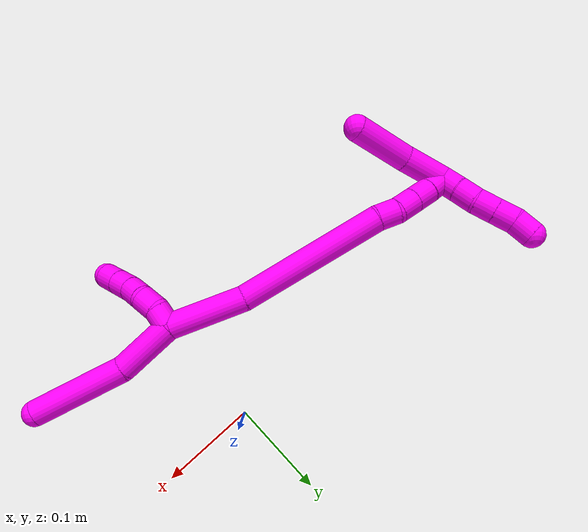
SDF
<sdf version="1.7">
 <world name="default">
  <model name="photoneo_s_sensor">
   <static>1</static>
   <pose>0 0 2 1.57079 1.57079 3.14159</pose>
   <link name="link">
    <inertial><mass>0.1</mass></inertial>
    <sensor name="sensor" type="depth">
     <update_rate>30</update_rate>
     <camera>
      <horizontal_fov>1.22</horizontal_fov>
      <image><width>1920</width><height>1200</height><format>B8G8R8</format></image>
      <clip><near>0.1</near><far>4</far></clip>
      <depth_camera><output>points</output></depth_camera>
     </camera>
     <plugin name="camera_plugin" filename="libgazebo_ros_depth_camera.so">
      <baseline>0.2</baseline>
      <alwaysOn>1</alwaysOn>
      <updateRate>0.0</updateRate>
      <cameraName>camera_ir</cameraName>
      <imageTopicName>/camera/color/image_raw</imageTopicName>
      <cameraInfoTopicName>/camera/color/camera_info</cameraInfoTopicName>
      <depthImageTopicName>/camera/depth/image_raw</depthImageTopicName>
      <depthImageCameraInfoTopicName>/camera/depth/camera_info</depthImageCameraInfoTopicName>
      <pointCloudTopicName>/camera/depth/points</pointCloudTopicName>
      <frameName>fr_optical</frameName>
      <pointCloudCutoff>0.1</pointCloudCutoff>
      <pointCloudCutoffMax>2.0</pointCloudCutoffMax>
      <distortionK1>0</distortionK1>
      <distortionK2>0</distortionK2>
      <distortionK3>0</distortionK3>
      <distortionT1>0</distortionT1>
      <distortionT2>0</distortionT2>
      <CxPrime>0</CxPrime>
      <Cx>0</Cx>
      <Cy>0</Cy>
      <focalLength>0</focalLength>
      <hackBaseline>0</hackBaseline>
     </plugin>
    </sensor>
   </link>
  </model>
  <model name="bin">
   <static>1</static>
   <link name="bottom">
    <collision name="collision-bottom">
     <pose>0 0 -0.01 0 -0 0</pose>
     <geometry><box><size>0.8 0.6 0.02</size></box></geometry>
     <surface>
      <friction><ode><mu>100</mu><mu2>100</mu2></ode></friction>
      <contact><collide_bitmask>65535</collide_bitmask></contact>
     </surface>
    </collision>
   </link>
   <link name="west_wall">
    <collision name="collision-west_wall">
     <pose>-0.41 0 0.1 0 -0 0</pose>
     <geometry><box><size>0.02 0.6 0.2</size></box></geometry>
     <surface>
      <friction><ode><mu>100</mu><mu2>100</mu2></ode></friction>
      <contact><collide_bitmask>65535</collide_bitmask></contact>
     </surface>
    </collision>
   </link>
   <link name="east_wall">
    <collision name="collision-east_wall">
     <pose>0.41 0 0.1 0 -0 0</pose>
     <geometry><box><size>0.02 0.6 0.2</size></box></geometry>
     <surface>
      <friction><ode><mu>100</mu><mu2>100</mu2></ode></friction>
      <contact><collide_bitmask>65535</collide_bitmask></contact>
     </surface>
    </collision>
   </link>
   <link name="south_wall">
    <collision name="collision-south_wall">
     <pose>0 -0.31 0.1 0 -0 0</pose>
     <geometry><box><size>0.8 0.02 0.2</size></box></geometry>
     <surface>
      <friction><ode><mu>100</mu><mu2>100</mu2></ode></friction>
      <contact><collide_bitmask>65535</collide_bitmask></contact>
     </surface>
    </collision>
   </link>
   <link name="north_wall">
    <collision name="collision-north_wall">
     <pose>0 0.31 0.1 0 -0 0</pose>
     <geometry><box><size>0.8 0.02 0.2</size></box></geometry>
     <surface>
      <friction><ode><mu>100</mu><mu2>100</mu2></ode></friction>
      <contact><collide_bitmask>65535</collide_bitmask></contact>
     </surface>
    </collision>
   </link>
  </model>
  <model name="10">
   <static>0</static>
   <link name="10">
    <collision name="collision-cylinder-e_1_2_8">
     <pose>0.023661 -0.005214 -0.015896 2.82465 0.955378 2.54274</pose>
     <geometry><cylinder><radius>0.0125</radius><length>0.057956</length></cylinder></geometry>
     <surface>
      <friction><ode><mu>1.16</mu><mu2>1.16</mu2><slip1>0</slip1><slip2>0</slip2></ode></friction>
      <contact><ode><kp>1e+06</kp><kd>1</kd><max_vel>0</max_vel><min_depth>0.001</min_depth></ode></contact>
     </surface>
    </collision>
    <visual name="visual-cylinder-e_1_2_8">
     <pose>0.023661 -0.005214 -0.015896 2.82465 0.955378 2.54274</pose>
     <geometry><cylinder><radius>0.0125</radius><length>0.057956</length></cylinder></geometry>
     <material><ambient>1 0 0.964706 1</ambient></material>
    </visual>
    <collision name="collision-cylinder-e_2_8_6">
     <pose>0.089957 -0.010229 -0.049122 -3.13012 1.18468 -3.12454</pose>
     <geometry><cylinder><radius>0.0125</radius><length>0.092044</length></cylinder></geometry>
     <surface>
      <friction><ode><mu>1.16</mu><mu2>1.16</mu2><slip1>0</slip1><slip2>0</slip2></ode></friction>
      <contact><ode><kp>1e+06</kp><kd>1</kd><max_vel>0</max_vel><min_depth>0.001</min_depth></ode></contact>
     </surface>
    </collision>
    <visual name="visual-cylinder-e_2_8_6">
     <pose>0.089957 -0.010229 -0.049122 -3.13012 1.18468 -3.12454</pose>
     <geometry><cylinder><radius>0.0125</radius><length>0.092044</length></cylinder></geometry>
     <material><ambient>1 0 0.964706 1</ambient></material>
    </visual>
    <collision name="collision-cylinder-e_1_2_9">
     <pose>0.00499 0.002723 0.008227 -0.319692 0.522465 -0.086149</pose>
     <geometry><cylinder><radius>0.0125</radius><length>0.02</length></cylinder></geometry>
     <surface>
      <friction><ode><mu>1.16</mu><mu2>1.16</mu2><slip1>0</slip1><slip2>0</slip2></ode></friction>
      <contact><ode><kp>1e+06</kp><kd>1</kd><max_vel>0</max_vel><min_depth>0.001</min_depth></ode></contact>
     </surface>
    </collision>
    <visual name="visual-cylinder-e_1_2_9">
     <pose>0.00499 0.002723 0.008227 -0.319692 0.522465 -0.086149</pose>
     <geometry><cylinder><radius>0.0125</radius><length>0.02</length></cylinder></geometry>
     <material><ambient>1 0 0.964706 1</ambient></material>
    </visual>
    <collision name="collision-cylinder-e_2_9_10">
     <pose>0.017217 0.006242 0.023309 -0.115419 0.809114 -0.049465</pose>
     <geometry><cylinder><radius>0.0125</radius><length>0.02</length></cylinder></geometry>
     <surface>
      <friction><ode><mu>1.16</mu><mu2>1.16</mu2><slip1>0</slip1><slip2>0</slip2></ode></friction>
      <contact><ode><kp>1e+06</kp><kd>1</kd><max_vel>0</max_vel><min_depth>0.001</min_depth></ode></contact>
     </surface>
    </collision>
    <visual name="visual-cylinder-e_2_9_10">
     <pose>0.017217 0.006242 0.023309 -0.115419 0.809114 -0.049465</pose>
     <geometry><cylinder><radius>0.0125</radius><length>0.02</length></cylinder></geometry>
     <material><ambient>1 0 0.964706 1</ambient></material>
    </visual>
    <collision name="collision-cylinder-e_3_10_11">
     <pose>0.031365 0.00448 0.036925 0.361552 0.762993 0.146375</pose>
     <geometry><cylinder><radius>0.0125</radius><length>0.02</length></cylinder></geometry>
     <surface>
      <friction><ode><mu>1.16</mu><mu2>1.16</mu2><slip1>0</slip1><slip2>0</slip2></ode></friction>
      <contact><ode><kp>1e+06</kp><kd>1</kd><max_vel>0</max_vel><min_depth>0.001</min_depth></ode></contact>
     </surface>
    </collision>
    <visual name="visual-cylinder-e_3_10_11">
     <pose>0.031365 0.00448 0.036925 0.361552 0.762993 0.146375</pose>
     <geometry><cylinder><radius>0.0125</radius><length>0.02</length></cylinder></geometry>
     <material><ambient>1 0 0.964706 1</ambient></material>
    </visual>
    <collision name="collision-cylinder-e_4_11_12">
     <pose>0.046073 -0.000201 0.049575 0.34617 0.894317 0.167294</pose>
     <geometry><cylinder><radius>0.0125</radius><length>0.02</length></cylinder></geometry>
     <surface>
      <friction><ode><mu>1.16</mu><mu2>1.16</mu2><slip1>0</slip1><slip2>0</slip2></ode></friction>
      <contact><ode><kp>1e+06</kp><kd>1</kd><max_vel>0</max_vel><min_depth>0.001</min_depth></ode></contact>
     </surface>
    </collision>
    <visual name="visual-cylinder-e_4_11_12">
     <pose>0.046073 -0.000201 0.049575 0.34617 0.894317 0.167294</pose>
     <geometry><cylinder><radius>0.0125</radius><length>0.02</length></cylinder></geometry>
     <material><ambient>1 0 0.964706 1</ambient></material>
    </visual>
    <collision name="collision-cylinder-e_5_12_5">
     <pose>0.061702 -0.004437 0.061313 0.346489 0.899601 0.168581</pose>
     <geometry><cylinder><radius>0.0125</radius><length>0.02</length></cylinder></geometry>
     <surface>
      <friction><ode><mu>1.16</mu><mu2>1.16</mu2><slip1>0</slip1><slip2>0</slip2></ode></friction>
      <contact><ode><kp>1e+06</kp><kd>1</kd><max_vel>0</max_vel><min_depth>0.001</min_depth></ode></contact>
     </surface>
    </collision>
    <visual name="visual-cylinder-e_5_12_5">
     <pose>0.061702 -0.004437 0.061313 0.346489 0.899601 0.168581</pose>
     <geometry><cylinder><radius>0.0125</radius><length>0.02</length></cylinder></geometry>
     <material><ambient>1 0 0.964706 1</ambient></material>
    </visual>
    <collision name="collision-cylinder-e_1_2_13">
     <pose>-0.034532 -0.005833 0.012606 0.433401 -1.18837 -0.295327</pose>
     <geometry><cylinder><radius>0.0125</radius><length>0.074442</length></cylinder></geometry>
     <surface>
      <friction><ode><mu>1.16</mu><mu2>1.16</mu2><slip1>0</slip1><slip2>0</slip2></ode></friction>
      <contact><ode><kp>1e+06</kp><kd>1</kd><max_vel>0</max_vel><min_depth>0.001</min_depth></ode></contact>
     </surface>
    </collision>
    <visual name="visual-cylinder-e_1_2_13">
     <pose>-0.034532 -0.005833 0.012606 0.433401 -1.18837 -0.295327</pose>
     <geometry><cylinder><radius>0.0125</radius><length>0.074442</length></cylinder></geometry>
     <material><ambient>1 0 0.964706 1</ambient></material>
    </visual>
    <collision name="collision-cylinder-e_2_13_14">
     <pose>-0.13463 -0.008817 0.056311 -0.091367 -1.12627 0.057707</pose>
     <geometry><cylinder><radius>0.0125</radius><length>0.145248</length></cylinder></geometry>
     <surface>
      <friction><ode><mu>1.16</mu><mu2>1.16</mu2><slip1>0</slip1><slip2>0</slip2></ode></friction>
      <contact><ode><kp>1e+06</kp><kd>1</kd><max_vel>0</max_vel><min_depth>0.001</min_depth></ode></contact>
     </surface>
    </collision>
    <visual name="visual-cylinder-e_2_13_14">
     <pose>-0.13463 -0.008817 0.056311 -0.091367 -1.12627 0.057707</pose>
     <geometry><cylinder><radius>0.0125</radius><length>0.145248</length></cylinder></geometry>
     <material><ambient>1 0 0.964706 1</ambient></material>
    </visual>
    <collision name="collision-cylinder-e_3_14_15">
     <pose>-0.209672 -0.007231 0.090715 0.365332 -1.21347 -0.255033</pose>
     <geometry><cylinder><radius>0.0125</radius><length>0.02023</length></cylinder></geometry>
     <surface>
      <friction><ode><mu>1.16</mu><mu2>1.16</mu2><slip1>0</slip1><slip2>0</slip2></ode></friction>
      <contact><ode><kp>1e+06</kp><kd>1</kd><max_vel>0</max_vel><min_depth>0.001</min_depth></ode></contact>
     </surface>
    </collision>
    <visual name="visual-cylinder-e_3_14_15">
     <pose>-0.209672 -0.007231 0.090715 0.365332 -1.21347 -0.255033</pose>
     <geometry><cylinder><radius>0.0125</radius><length>0.02023</length></cylinder></geometry>
     <material><ambient>1 0 0.964706 1</ambient></material>
    </visual>
    <collision name="collision-cylinder-e_4_15_16">
     <pose>-0.226941 -0.01077 0.099872 0.370786 -0.89258 -0.178998</pose>
     <geometry><cylinder><radius>0.0125</radius><length>0.020014</length></cylinder></geometry>
     <surface>
      <friction><ode><mu>1.16</mu><mu2>1.16</mu2><slip1>0</slip1><slip2>0</slip2></ode></friction>
      <contact><ode><kp>1e+06</kp><kd>1</kd><max_vel>0</max_vel><min_depth>0.001</min_depth></ode></contact>
     </surface>
    </collision>
    <visual name="visual-cylinder-e_4_15_16">
     <pose>-0.226941 -0.01077 0.099872 0.370786 -0.89258 -0.178998</pose>
     <geometry><cylinder><radius>0.0125</radius><length>0.020014</length></cylinder></geometry>
     <material><ambient>1 0 0.964706 1</ambient></material>
    </visual>
    <collision name="collision-cylinder-e_5_16_17">
     <pose>-0.242527 -0.015336 0.111577 0.373061 -0.892112 -0.180008</pose>
     <geometry><cylinder><radius>0.0125</radius><length>0.020025</length></cylinder></geometry>
     <surface>
      <friction><ode><mu>1.16</mu><mu2>1.16</mu2><slip1>0</slip1><slip2>0</slip2></ode></friction>
      <contact><ode><kp>1e+06</kp><kd>1</kd><max_vel>0</max_vel><min_depth>0.001</min_depth></ode></contact>
     </surface>
    </collision>
    <visual name="visual-cylinder-e_5_16_17">
     <pose>-0.242527 -0.015336 0.111577 0.373061 -0.892112 -0.180008</pose>
     <geometry><cylinder><radius>0.0125</radius><length>0.020025</length></cylinder></geometry>
     <material><ambient>1 0 0.964706 1</ambient></material>
    </visual>
    <collision name="collision-cylinder-e_6_17_1">
     <pose>-0.257556 -0.019744 0.124032 0.310273 -0.806688 -0.133281</pose>
     <geometry><cylinder><radius>0.0125</radius><length>0.020042</length></cylinder></geometry>
     <surface>
      <friction><ode><mu>1.16</mu><mu2>1.16</mu2><slip1>0</slip1><slip2>0</slip2></ode></friction>
      <contact><ode><kp>1e+06</kp><kd>1</kd><max_vel>0</max_vel><min_depth>0.001</min_depth></ode></contact>
     </surface>
    </collision>
    <visual name="visual-cylinder-e_6_17_1">
     <pose>-0.257556 -0.019744 0.124032 0.310273 -0.806688 -0.133281</pose>
     <geometry><cylinder><radius>0.0125</radius><length>0.020042</length></cylinder></geometry>
     <material><ambient>1 0 0.964706 1</ambient></material>
    </visual>
    <collision name="collision-cylinder-e_1_1_18">
     <pose>-0.24824 -0.009445 0.137278 -1.07945 0.865831 -0.540185</pose>
     <geometry><cylinder><radius>0.0125</radius><length>0.04346</length></cylinder></geometry>
     <surface>
      <friction><ode><mu>1.16</mu><mu2>1.16</mu2><slip1>0</slip1><slip2>0</slip2></ode></friction>
      <contact><ode><kp>1e+06</kp><kd>1</kd><max_vel>0</max_vel><min_depth>0.001</min_depth></ode></contact>
     </surface>
    </collision>
    <visual name="visual-cylinder-e_1_1_18">
     <pose>-0.24824 -0.009445 0.137278 -1.07945 0.865831 -0.540185</pose>
     <geometry><cylinder><radius>0.0125</radius><length>0.04346</length></cylinder></geometry>
     <material><ambient>1 0 0.964706 1</ambient></material>
    </visual>
    <collision name="collision-cylinder-e_2_18_4">
     <pose>-0.212056 0.022354 0.150083 -1.26301 0.76776 -0.574529</pose>
     <geometry><cylinder><radius>0.0125</radius><length>0.05654</length></cylinder></geometry>
     <surface>
      <friction><ode><mu>1.16</mu><mu2>1.16</mu2><slip1>0</slip1><slip2>0</slip2></ode></friction>
      <contact><ode><kp>1e+06</kp><kd>1</kd><max_vel>0</max_vel><min_depth>0.001</min_depth></ode></contact>
     </surface>
    </collision>
    <visual name="visual-cylinder-e_2_18_4">
     <pose>-0.212056 0.022354 0.150083 -1.26301 0.76776 -0.574529</pose>
     <geometry><cylinder><radius>0.0125</radius><length>0.05654</length></cylinder></geometry>
     <material><ambient>1 0 0.964706 1</ambient></material>
    </visual>
    <collision name="collision-cylinder-e_1_1_19">
     <pose>-0.271612 -0.021977 0.123323 3.12571 -0.750641 -3.10129</pose>
     <geometry><cylinder><radius>0.0125</radius><length>0.02</length></cylinder></geometry>
     <surface>
      <friction><ode><mu>1.16</mu><mu2>1.16</mu2><slip1>0</slip1><slip2>0</slip2></ode></friction>
      <contact><ode><kp>1e+06</kp><kd>1</kd><max_vel>0</max_vel><min_depth>0.001</min_depth></ode></contact>
     </surface>
    </collision>
    <visual name="visual-cylinder-e_1_1_19">
     <pose>-0.271612 -0.021977 0.123323 3.12571 -0.750641 -3.10129</pose>
     <geometry><cylinder><radius>0.0125</radius><length>0.02</length></cylinder></geometry>
     <material><ambient>1 0 0.964706 1</ambient></material>
    </visual>
    <collision name="collision-cylinder-e_2_19_20">
     <pose>-0.285453 -0.023075 0.108958 3.0032 -0.778307 -2.80673</pose>
     <geometry><cylinder><radius>0.0125</radius><length>0.02</length></cylinder></geometry>
     <surface>
      <friction><ode><mu>1.16</mu><mu2>1.16</mu2><slip1>0</slip1><slip2>0</slip2></ode></friction>
      <contact><ode><kp>1e+06</kp><kd>1</kd><max_vel>0</max_vel><min_depth>0.001</min_depth></ode></contact>
     </surface>
    </collision>
    <visual name="visual-cylinder-e_2_19_20">
     <pose>-0.285453 -0.023075 0.108958 3.0032 -0.778307 -2.80673</pose>
     <geometry><cylinder><radius>0.0125</radius><length>0.02</length></cylinder></geometry>
     <material><ambient>1 0 0.964706 1</ambient></material>
    </visual>
    <collision name="collision-cylinder-e_3_20_21">
     <pose>-0.300481 -0.026189 0.096306 2.77785 -0.928382 -2.43756</pose>
     <geometry><cylinder><radius>0.0125</radius><length>0.02</length></cylinder></geometry>
     <surface>
      <friction><ode><mu>1.16</mu><mu2>1.16</mu2><slip1>0</slip1><slip2>0</slip2></ode></friction>
      <contact><ode><kp>1e+06</kp><kd>1</kd><max_vel>0</max_vel><min_depth>0.001</min_depth></ode></contact>
     </surface>
    </collision>
    <visual name="visual-cylinder-e_3_20_21">
     <pose>-0.300481 -0.026189 0.096306 2.77785 -0.928382 -2.43756</pose>
     <geometry><cylinder><radius>0.0125</radius><length>0.02</length></cylinder></geometry>
     <material><ambient>1 0 0.964706 1</ambient></material>
    </visual>
    <collision name="collision-cylinder-e_4_21_22">
     <pose>-0.316532 -0.03032 0.085113 2.79838 -0.934729 -2.47999</pose>
     <geometry><cylinder><radius>0.0125</radius><length>0.02</length></cylinder></geometry>
     <surface>
      <friction><ode><mu>1.16</mu><mu2>1.16</mu2><slip1>0</slip1><slip2>0</slip2></ode></friction>
      <contact><ode><kp>1e+06</kp><kd>1</kd><max_vel>0</max_vel><min_depth>0.001</min_depth></ode></contact>
     </surface>
    </collision>
    <visual name="visual-cylinder-e_4_21_22">
     <pose>-0.316532 -0.03032 0.085113 2.79838 -0.934729 -2.47999</pose>
     <geometry><cylinder><radius>0.0125</radius><length>0.02</length></cylinder></geometry>
     <material><ambient>1 0 0.964706 1</ambient></material>
    </visual>
    <collision name="collision-cylinder-e_5_22_3">
     <pose>-0.331226 -0.035155 0.07261 2.75208 -0.727453 -2.18539</pose>
     <geometry><cylinder><radius>0.0125</radius><length>0.02</length></cylinder></geometry>
     <surface>
      <friction><ode><mu>1.16</mu><mu2>1.16</mu2><slip1>0</slip1><slip2>0</slip2></ode></friction>
      <contact><ode><kp>1e+06</kp><kd>1</kd><max_vel>0</max_vel><min_depth>0.001</min_depth></ode></contact>
     </surface>
    </collision>
    <visual name="visual-cylinder-e_5_22_3">
     <pose>-0.331226 -0.035155 0.07261 2.75208 -0.727453 -2.18539</pose>
     <geometry><cylinder><radius>0.0125</radius><length>0.02</length></cylinder></geometry>
     <material><ambient>1 0 0.964706 1</ambient></material>
    </visual>
    <collision name="collision-sphere-3">
     <pose>-0.337875 -0.037991 0.0657 0 -0 0</pose>
     <geometry><sphere><radius>0.0125</radius></sphere></geometry>
     <surface>
      <friction><ode><mu>1.16</mu><mu2>1.16</mu2><slip1>0</slip1><slip2>0</slip2></ode></friction>
      <contact><ode><kp>1e+06</kp><kd>1</kd><max_vel>0</max_vel><min_depth>0.001</min_depth></ode></contact>
     </surface>
    </collision>
    <visual name="visual-sphere-3">
     <pose>-0.337875 -0.037991 0.0657 0 -0 0</pose>
     <geometry><sphere><radius>0.0125</radius></sphere></geometry>
     <material><ambient>1 0 0.964706 1</ambient></material>
    </visual>
    <collision name="collision-sphere-22">
     <pose>-0.324576 -0.032319 0.079519 0 -0 0</pose>
     <geometry><sphere><radius>0.0125</radius></sphere></geometry>
     <surface>
      <friction><ode><mu>1.16</mu><mu2>1.16</mu2><slip1>0</slip1><slip2>0</slip2></ode></friction>
      <contact><ode><kp>1e+06</kp><kd>1</kd><max_vel>0</max_vel><min_depth>0.001</min_depth></ode></contact>
     </surface>
    </collision>
    <visual name="visual-sphere-22">
     <pose>-0.324576 -0.032319 0.079519 0 -0 0</pose>
     <geometry><sphere><radius>0.0125</radius></sphere></geometry>
     <material><ambient>1 0 0.964706 1</ambient></material>
    </visual>
    <collision name="collision-sphere-21">
     <pose>-0.308487 -0.028321 0.090707 0 -0 0</pose>
     <geometry><sphere><radius>0.0125</radius></sphere></geometry>
     <surface>
      <friction><ode><mu>1.16</mu><mu2>1.16</mu2><slip1>0</slip1><slip2>0</slip2></ode></friction>
      <contact><ode><kp>1e+06</kp><kd>1</kd><max_vel>0</max_vel><min_depth>0.001</min_depth></ode></contact>
     </surface>
    </collision>
    <visual name="visual-sphere-21">
     <pose>-0.308487 -0.028321 0.090707 0 -0 0</pose>
     <geometry><sphere><radius>0.0125</radius></sphere></geometry>
     <material><ambient>1 0 0.964706 1</ambient></material>
    </visual>
    <collision name="collision-sphere-20">
     <pose>-0.292474 -0.024058 0.101905 0 -0 0</pose>
     <geometry><sphere><radius>0.0125</radius></sphere></geometry>
     <surface>
      <friction><ode><mu>1.16</mu><mu2>1.16</mu2><slip1>0</slip1><slip2>0</slip2></ode></friction>
      <contact><ode><kp>1e+06</kp><kd>1</kd><max_vel>0</max_vel><min_depth>0.001</min_depth></ode></contact>
     </surface>
    </collision>
    <visual name="visual-sphere-20">
     <pose>-0.292474 -0.024058 0.101905 0 -0 0</pose>
     <geometry><sphere><radius>0.0125</radius></sphere></geometry>
     <material><ambient>1 0 0.964706 1</ambient></material>
    </visual>
    <collision name="collision-sphere-19">
     <pose>-0.278433 -0.022093 0.116011 0 -0 0</pose>
     <geometry><sphere><radius>0.0125</radius></sphere></geometry>
     <surface>
      <friction><ode><mu>1.16</mu><mu2>1.16</mu2><slip1>0</slip1><slip2>0</slip2></ode></friction>
      <contact><ode><kp>1e+06</kp><kd>1</kd><max_vel>0</max_vel><min_depth>0.001</min_depth></ode></contact>
     </surface>
    </collision>
    <visual name="visual-sphere-19">
     <pose>-0.278433 -0.022093 0.116011 0 -0 0</pose>
     <geometry><sphere><radius>0.0125</radius></sphere></geometry>
     <material><ambient>1 0 0.964706 1</ambient></material>
    </visual>
    <collision name="collision-sphere-11">
     <pose>0.038276 0.001923 0.043685 0 -0 0</pose>
     <geometry><sphere><radius>0.0125</radius></sphere></geometry>
     <surface>
      <friction><ode><mu>1.16</mu><mu2>1.16</mu2><slip1>0</slip1><slip2>0</slip2></ode></friction>
      <contact><ode><kp>1e+06</kp><kd>1</kd><max_vel>0</max_vel><min_depth>0.001</min_depth></ode></contact>
     </surface>
    </collision>
    <visual name="visual-sphere-11">
     <pose>0.038276 0.001923 0.043685 0 -0 0</pose>
     <geometry><sphere><radius>0.0125</radius></sphere></geometry>
     <material><ambient>1 0 0.964706 1</ambient></material>
    </visual>
    <collision name="collision-sphere-10">
     <pose>0.024454 0.007037 0.030165 0 -0 0</pose>
     <geometry><sphere><radius>0.0125</radius></sphere></geometry>
     <surface>
      <friction><ode><mu>1.16</mu><mu2>1.16</mu2><slip1>0</slip1><slip2>0</slip2></ode></friction>
      <contact><ode><kp>1e+06</kp><kd>1</kd><max_vel>0</max_vel><min_depth>0.001</min_depth></ode></contact>
     </surface>
    </collision>
    <visual name="visual-sphere-10">
     <pose>0.024454 0.007037 0.030165 0 -0 0</pose>
     <geometry><sphere><radius>0.0125</radius></sphere></geometry>
     <material><ambient>1 0 0.964706 1</ambient></material>
    </visual>
    <collision name="collision-sphere-6">
     <pose>0.132591 -0.01003 -0.066452 0 -0 0</pose>
     <geometry><sphere><radius>0.0125</radius></sphere></geometry>
     <surface>
      <friction><ode><mu>1.16</mu><mu2>1.16</mu2><slip1>0</slip1><slip2>0</slip2></ode></friction>
      <contact><ode><kp>1e+06</kp><kd>1</kd><max_vel>0</max_vel><min_depth>0.001</min_depth></ode></contact>
     </surface>
    </collision>
    <visual name="visual-sphere-6">
     <pose>0.132591 -0.01003 -0.066452 0 -0 0</pose>
     <geometry><sphere><radius>0.0125</radius></sphere></geometry>
     <material><ambient>1 0 0.964706 1</ambient></material>
    </visual>
    <collision name="collision-sphere-9">
     <pose>0.00998 0.005447 0.016454 0 -0 0</pose>
     <geometry><sphere><radius>0.0125</radius></sphere></geometry>
     <surface>
      <friction><ode><mu>1.16</mu><mu2>1.16</mu2><slip1>0</slip1><slip2>0</slip2></ode></friction>
      <contact><ode><kp>1e+06</kp><kd>1</kd><max_vel>0</max_vel><min_depth>0.001</min_depth></ode></contact>
     </surface>
    </collision>
    <visual name="visual-sphere-9">
     <pose>0.00998 0.005447 0.016454 0 -0 0</pose>
     <geometry><sphere><radius>0.0125</radius></sphere></geometry>
     <material><ambient>1 0 0.964706 1</ambient></material>
    </visual>
    <collision name="collision-sphere-2">
     <geometry><sphere><radius>0.0125</radius></sphere></geometry>
     <surface>
      <friction><ode><mu>1.16</mu><mu2>1.16</mu2><slip1>0</slip1><slip2>0</slip2></ode></friction>
      <contact><ode><kp>1e+06</kp><kd>1</kd><max_vel>0</max_vel><min_depth>0.001</min_depth></ode></contact>
     </surface>
    </collision>
    <visual name="visual-sphere-2">
     <geometry><sphere><radius>0.0125</radius></sphere></geometry>
     <material><ambient>1 0 0.964706 1</ambient></material>
    </visual>
    <collision name="collision-sphere-8">
     <pose>0.047323 -0.010428 -0.031792 0 -0 0</pose>
     <geometry><sphere><radius>0.0125</radius></sphere></geometry>
     <surface>
      <friction><ode><mu>1.16</mu><mu2>1.16</mu2><slip1>0</slip1><slip2>0</slip2></ode></friction>
      <contact><ode><kp>1e+06</kp><kd>1</kd><max_vel>0</max_vel><min_depth>0.001</min_depth></ode></contact>
     </surface>
    </collision>
    <visual name="visual-sphere-8">
     <pose>0.047323 -0.010428 -0.031792 0 -0 0</pose>
     <geometry><sphere><radius>0.0125</radius></sphere></geometry>
     <material><ambient>1 0 0.964706 1</ambient></material>
    </visual>
    <collision name="collision-sphere-12">
     <pose>0.053871 -0.002325 0.055464 0 -0 0</pose>
     <geometry><sphere><radius>0.0125</radius></sphere></geometry>
     <surface>
      <friction><ode><mu>1.16</mu><mu2>1.16</mu2><slip1>0</slip1><slip2>0</slip2></ode></friction>
      <contact><ode><kp>1e+06</kp><kd>1</kd><max_vel>0</max_vel><min_depth>0.001</min_depth></ode></contact>
     </surface>
    </collision>
    <visual name="visual-sphere-12">
     <pose>0.053871 -0.002325 0.055464 0 -0 0</pose>
     <geometry><sphere><radius>0.0125</radius></sphere></geometry>
     <material><ambient>1 0 0.964706 1</ambient></material>
    </visual>
    <collision name="collision-sphere-5">
     <pose>0.069533 -0.006549 0.067163 0 -0 0</pose>
     <geometry><sphere><radius>0.0125</radius></sphere></geometry>
     <surface>
      <friction><ode><mu>1.16</mu><mu2>1.16</mu2><slip1>0</slip1><slip2>0</slip2></ode></friction>
      <contact><ode><kp>1e+06</kp><kd>1</kd><max_vel>0</max_vel><min_depth>0.001</min_depth></ode></contact>
     </surface>
    </collision>
    <visual name="visual-sphere-5">
     <pose>0.069533 -0.006549 0.067163 0 -0 0</pose>
     <geometry><sphere><radius>0.0125</radius></sphere></geometry>
     <material><ambient>1 0 0.964706 1</ambient></material>
    </visual>
    <collision name="collision-sphere-13">
     <pose>-0.069064 -0.011666 0.025211 0 -0 0</pose>
     <geometry><sphere><radius>0.0125</radius></sphere></geometry>
     <surface>
      <friction><ode><mu>1.16</mu><mu2>1.16</mu2><slip1>0</slip1><slip2>0</slip2></ode></friction>
      <contact><ode><kp>1e+06</kp><kd>1</kd><max_vel>0</max_vel><min_depth>0.001</min_depth></ode></contact>
     </surface>
    </collision>
    <visual name="visual-sphere-13">
     <pose>-0.069064 -0.011666 0.025211 0 -0 0</pose>
     <geometry><sphere><radius>0.0125</radius></sphere></geometry>
     <material><ambient>1 0 0.964706 1</ambient></material>
    </visual>
    <collision name="collision-sphere-14">
     <pose>-0.200196 -0.005967 0.087411 0 -0 0</pose>
     <geometry><sphere><radius>0.0125</radius></sphere></geometry>
     <surface>
      <friction><ode><mu>1.16</mu><mu2>1.16</mu2><slip1>0</slip1><slip2>0</slip2></ode></friction>
      <contact><ode><kp>1e+06</kp><kd>1</kd><max_vel>0</max_vel><min_depth>0.001</min_depth></ode></contact>
     </surface>
    </collision>
    <visual name="visual-sphere-14">
     <pose>-0.200196 -0.005967 0.087411 0 -0 0</pose>
     <geometry><sphere><radius>0.0125</radius></sphere></geometry>
     <material><ambient>1 0 0.964706 1</ambient></material>
    </visual>
    <collision name="collision-sphere-15">
     <pose>-0.219148 -0.008495 0.09402 0 -0 0</pose>
     <geometry><sphere><radius>0.0125</radius></sphere></geometry>
     <surface>
      <friction><ode><mu>1.16</mu><mu2>1.16</mu2><slip1>0</slip1><slip2>0</slip2></ode></friction>
      <contact><ode><kp>1e+06</kp><kd>1</kd><max_vel>0</max_vel><min_depth>0.001</min_depth></ode></contact>
     </surface>
    </collision>
    <visual name="visual-sphere-15">
     <pose>-0.219148 -0.008495 0.09402 0 -0 0</pose>
     <geometry><sphere><radius>0.0125</radius></sphere></geometry>
     <material><ambient>1 0 0.964706 1</ambient></material>
    </visual>
    <collision name="collision-sphere-16">
     <pose>-0.234733 -0.013045 0.105723 0 -0 0</pose>
     <geometry><sphere><radius>0.0125</radius></sphere></geometry>
     <surface>
      <friction><ode><mu>1.16</mu><mu2>1.16</mu2><slip1>0</slip1><slip2>0</slip2></ode></friction>
      <contact><ode><kp>1e+06</kp><kd>1</kd><max_vel>0</max_vel><min_depth>0.001</min_depth></ode></contact>
     </surface>
    </collision>
    <visual name="visual-sphere-16">
     <pose>-0.234733 -0.013045 0.105723 0 -0 0</pose>
     <geometry><sphere><radius>0.0125</radius></sphere></geometry>
     <material><ambient>1 0 0.964706 1</ambient></material>
    </visual>
    <collision name="collision-sphere-17">
     <pose>-0.250321 -0.017627 0.11743 0 -0 0</pose>
     <geometry><sphere><radius>0.0125</radius></sphere></geometry>
     <surface>
      <friction><ode><mu>1.16</mu><mu2>1.16</mu2><slip1>0</slip1><slip2>0</slip2></ode></friction>
      <contact><ode><kp>1e+06</kp><kd>1</kd><max_vel>0</max_vel><min_depth>0.001</min_depth></ode></contact>
     </surface>
    </collision>
    <visual name="visual-sphere-17">
     <pose>-0.250321 -0.017627 0.11743 0 -0 0</pose>
     <geometry><sphere><radius>0.0125</radius></sphere></geometry>
     <material><ambient>1 0 0.964706 1</ambient></material>
    </visual>
    <collision name="collision-sphere-1">
     <pose>-0.264791 -0.021861 0.130634 0 -0 0</pose>
     <geometry><sphere><radius>0.0125</radius></sphere></geometry>
     <surface>
      <friction><ode><mu>1.16</mu><mu2>1.16</mu2><slip1>0</slip1><slip2>0</slip2></ode></friction>
      <contact><ode><kp>1e+06</kp><kd>1</kd><max_vel>0</max_vel><min_depth>0.001</min_depth></ode></contact>
     </surface>
    </collision>
    <visual name="visual-sphere-1">
     <pose>-0.264791 -0.021861 0.130634 0 -0 0</pose>
     <geometry><sphere><radius>0.0125</radius></sphere></geometry>
     <material><ambient>1 0 0.964706 1</ambient></material>
    </visual>
    <collision name="collision-sphere-18">
     <pose>-0.23169 0.00297 0.143922 0 -0 0</pose>
     <geometry><sphere><radius>0.0125</radius></sphere></geometry>
     <surface>
      <friction><ode><mu>1.16</mu><mu2>1.16</mu2><slip1>0</slip1><slip2>0</slip2></ode></friction>
      <contact><ode><kp>1e+06</kp><kd>1</kd><max_vel>0</max_vel><min_depth>0.001</min_depth></ode></contact>
     </surface>
    </collision>
    <visual name="visual-sphere-18">
     <pose>-0.23169 0.00297 0.143922 0 -0 0</pose>
     <geometry><sphere><radius>0.0125</radius></sphere></geometry>
     <material><ambient>1 0 0.964706 1</ambient></material>
    </visual>
    <collision name="collision-sphere-4">
     <pose>-0.192422 0.041737 0.156245 0 -0 0</pose>
     <geometry><sphere><radius>0.0125</radius></sphere></geometry>
     <surface>
      <friction><ode><mu>1.16</mu><mu2>1.16</mu2><slip1>0</slip1><slip2>0</slip2></ode></friction>
      <contact><ode><kp>1e+06</kp><kd>1</kd><max_vel>0</max_vel><min_depth>0.001</min_depth></ode></contact>
     </surface>
    </collision>
    <visual name="visual-sphere-4">
     <pose>-0.192422 0.041737 0.156245 0 -0 0</pose>
     <geometry><sphere><radius>0.0125</radius></sphere></geometry>
     <material><ambient>1 0 0.964706 1</ambient></material>
    </visual>
    <inertial>
     <pose>-0.107911 -0.007637 0.053325 0 -0 0</pose>
     <mass>0.75</mass>
     <inertia>
      <ixx>0.000101</ixx>
      <ixy>0</ixy>
      <ixz>0</ixz>
      <iyy>0.000416</iyy>
      <iyz>0</iyz>
      <izz>0.00017</izz>
     </inertia>
    </inertial>
   </link>
   <pose>-0.009243 -0.110362 0.061557 2.01524 0.183403 -0.60865</pose>
  </model>
 </world>
</sdf>
